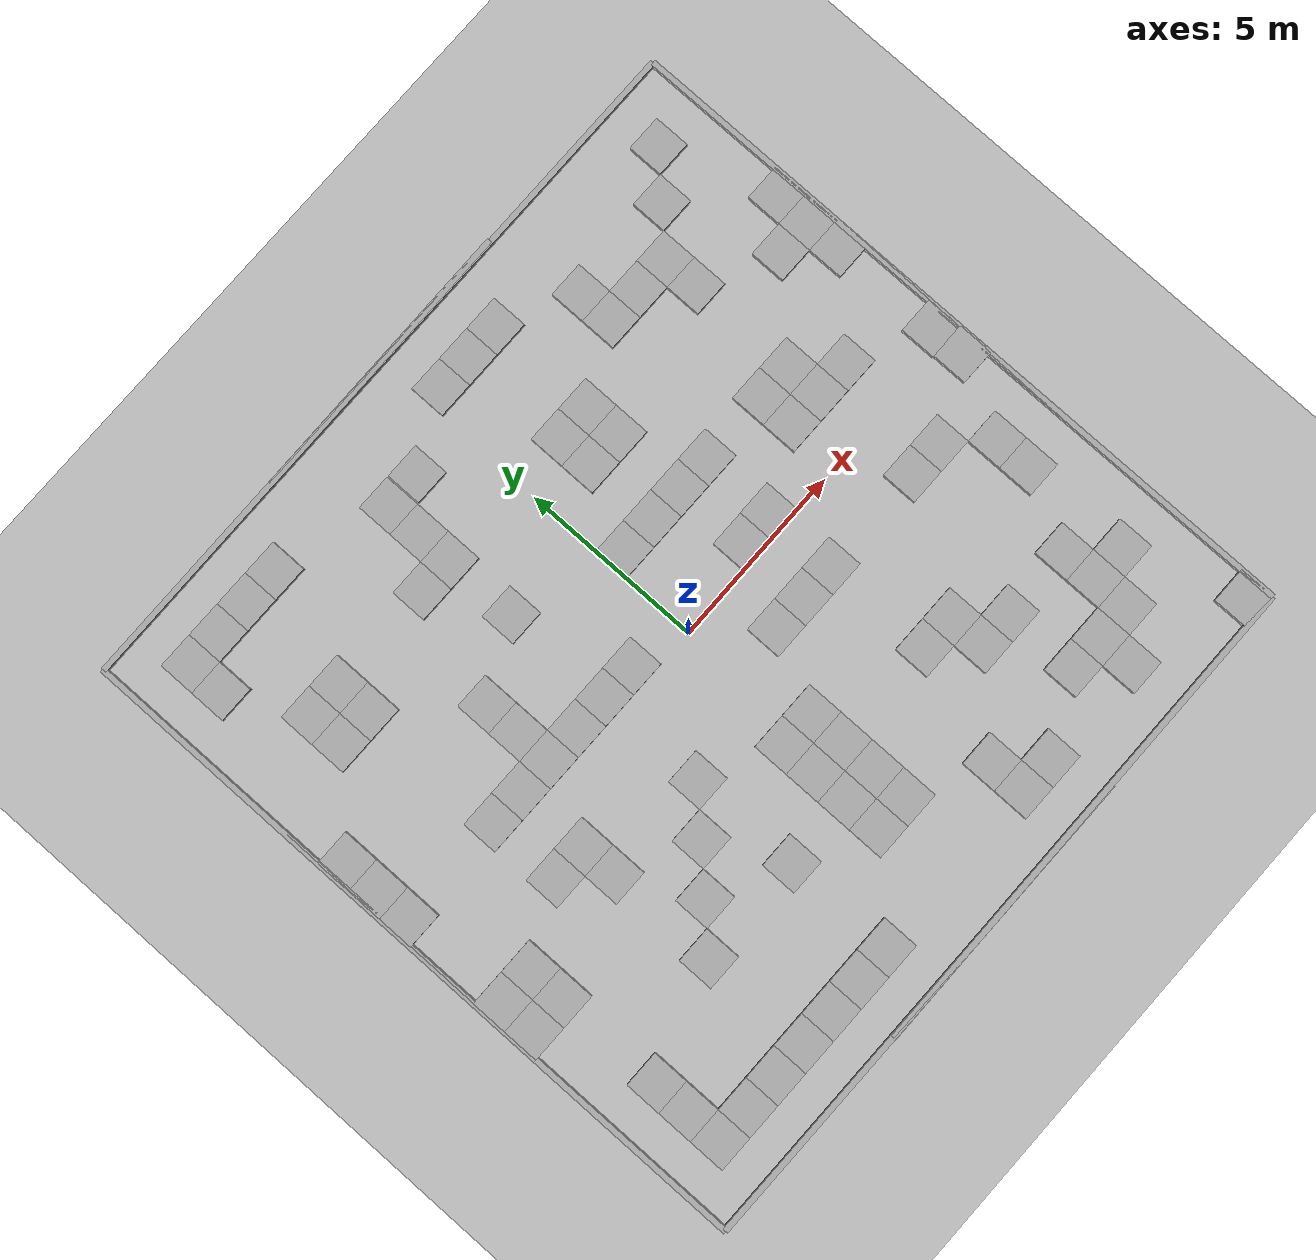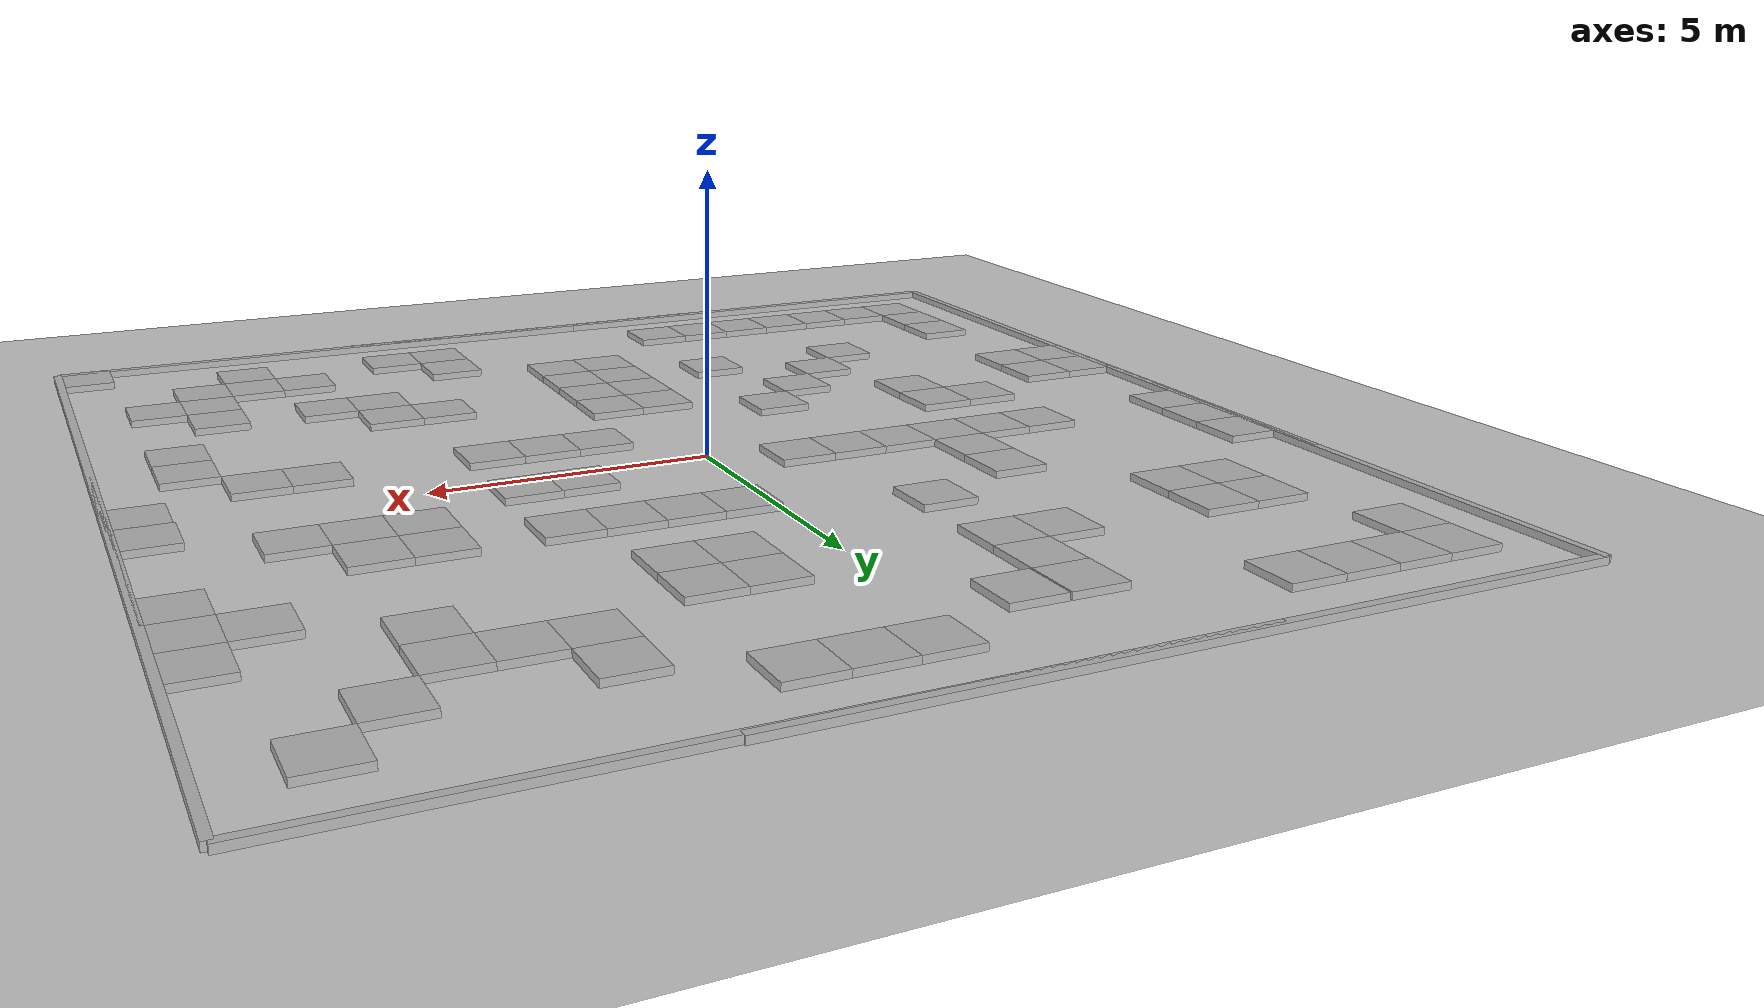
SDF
<sdf version="1.7">
 <world name="default">
  <light name="sun" type="directional">
   <pose>0 0 10 0 -0 0</pose>
   <diffuse>0.8 0.8 0.8 1</diffuse>
   <specular>0.2 0.2 0.2 1</specular>
   <attenuation>
    <range>1000</range>
    <constant>0.9</constant>
    <linear>0.01</linear>
    <quadratic>0.001</quadratic>
   </attenuation>
   <direction>-0.5 0.1 -0.9</direction>
   <spot><inner_angle>0</inner_angle><outer_angle>0</outer_angle><falloff>0</falloff></spot>
  </light>
  <model name="ground_plane">
   <static>1</static>
   <link name="link">
    <collision name="collision">
     <geometry><plane><normal>0 0 1</normal><size>100 100</size></plane></geometry>
     <surface>
      <contact><collide_bitmask>65535</collide_bitmask></contact>
      <friction><ode><mu>100</mu><mu2>50</mu2></ode></friction>
     </surface>
    </collision>
    <visual name="visual">
     <cast_shadows>0</cast_shadows>
     <geometry><plane><normal>0 0 1</normal><size>100 100</size></plane></geometry>
     <material>
      <script><uri>file://media/materials/scripts/gazebo.material</uri><name>Gazebo/Grey</name></script>
     </material>
    </visual>
   </link>
  </model>
  <gravity>0 0 -9.8</gravity>
  <magnetic_field>6e-06 2.3e-05 -4.2e-05</magnetic_field>
  <atmosphere type="adiabatic"/>
  <physics type="ode">
   <max_step_size>0.001</max_step_size>
   <real_time_factor>1</real_time_factor>
   <real_time_update_rate>1000</real_time_update_rate>
  </physics>
  <scene><ambient>0.4 0.4 0.4 1</ambient><background>0.7 0.7 0.7 1</background><shadows>1</shadows></scene>
  <spherical_coordinates>
   <surface_model>EARTH_WGS84</surface_model>
   <latitude_deg>0</latitude_deg>
   <longitude_deg>0</longitude_deg>
   <elevation>0</elevation>
   <heading_deg>0</heading_deg>
  </spherical_coordinates>
  <model name="concrete_barrier_14m">
   <static>1</static>
   <link name="link">
    <collision name="concrete_barrier_14m_01">
     <pose>-0 0 0.3 0 -0 0</pose>
     <geometry><box><size>14 0.15 0.6</size></box></geometry>
    </collision>
    <visual name="concrete_barrier_14m_visual">
     <geometry><mesh><uri>model://concrete_barrier_14m/meshes/concrete_barrier_14m.dae</uri></mesh></geometry>
    </visual>
   </link>
   <pose>-10 3 0 0 -0 0</pose>
  </model>
  <model name="concrete_barrier_14m_0">
   <static>1</static>
   <link name="link">
    <collision name="concrete_barrier_14m_01">
     <pose>-0 0 0.3 0 -0 0</pose>
     <geometry><box><size>14 0.15 0.6</size></box></geometry>
    </collision>
    <visual name="concrete_barrier_14m_visual">
     <geometry><mesh><uri>model://concrete_barrier_14m/meshes/concrete_barrier_14m.dae</uri></mesh></geometry>
    </visual>
   </link>
   <pose>10 3 0 0 -0 0</pose>
  </model>
  <model name="concrete_barrier_14m_1">
   <static>1</static>
   <link name="link">
    <collision name="concrete_barrier_14m_01">
     <pose>-0 0 0.3 0 -0 0</pose>
     <geometry><box><size>14 0.15 0.6</size></box></geometry>
    </collision>
    <visual name="concrete_barrier_14m_visual">
     <geometry><mesh><uri>model://concrete_barrier_14m/meshes/concrete_barrier_14m.dae</uri></mesh></geometry>
    </visual>
   </link>
   <pose>-3 10 0 0 -0 1.57603</pose>
  </model>
  <model name="concrete_barrier_14m_2">
   <static>1</static>
   <link name="link">
    <collision name="concrete_barrier_14m_01">
     <pose>-0 0 0.3 0 -0 0</pose>
     <geometry><box><size>14 0.15 0.6</size></box></geometry>
    </collision>
    <visual name="concrete_barrier_14m_visual">
     <geometry><mesh><uri>model://concrete_barrier_14m/meshes/concrete_barrier_14m.dae</uri></mesh></geometry>
    </visual>
   </link>
   <pose>-10 -3 0 0 -0 0</pose>
  </model>
  <model name="concrete_barrier_14m_3">
   <static>1</static>
   <link name="link">
    <collision name="concrete_barrier_14m_01">
     <pose>-0 0 0.3 0 -0 0</pose>
     <geometry><box><size>14 0.15 0.6</size></box></geometry>
    </collision>
    <visual name="concrete_barrier_14m_visual">
     <geometry><mesh><uri>model://concrete_barrier_14m/meshes/concrete_barrier_14m.dae</uri></mesh></geometry>
    </visual>
   </link>
   <pose>10 -3 0 0 -0 0</pose>
  </model>
  <model name="concrete_barrier_14m_4">
   <static>1</static>
   <link name="link">
    <collision name="concrete_barrier_14m_01">
     <pose>-0 0 0.3 0 -0 0</pose>
     <geometry><box><size>14 0.15 0.6</size></box></geometry>
    </collision>
    <visual name="concrete_barrier_14m_visual">
     <geometry><mesh><uri>model://concrete_barrier_14m/meshes/concrete_barrier_14m.dae</uri></mesh></geometry>
    </visual>
   </link>
   <pose>3 10 0 0 0 -1.56953</pose>
  </model>
  <model name="concrete_barrier_14m_5">
   <static>1</static>
   <link name="link">
    <collision name="concrete_barrier_14m_01">
     <pose>-0 0 0.3 0 -0 0</pose>
     <geometry><box><size>14 0.15 0.6</size></box></geometry>
    </collision>
    <visual name="concrete_barrier_14m_visual">
     <geometry><mesh><uri>model://concrete_barrier_14m/meshes/concrete_barrier_14m.dae</uri></mesh></geometry>
    </visual>
   </link>
   <pose>-3 -10 0 0 -0 1.56737</pose>
  </model>
  <model name="concrete_barrier_14m_6">
   <static>1</static>
   <link name="link">
    <collision name="concrete_barrier_14m_01">
     <pose>-0 0 0.3 0 -0 0</pose>
     <geometry><box><size>14 0.15 0.6</size></box></geometry>
    </collision>
    <visual name="concrete_barrier_14m_visual">
     <geometry><mesh><uri>model://concrete_barrier_14m/meshes/concrete_barrier_14m.dae</uri></mesh></geometry>
    </visual>
   </link>
   <pose>3 -10 0 0 0 -1.56953</pose>
  </model>
  <model name="concrete_cube_1m">
   <static>1</static>
   <link name="link">
    <collision name="concrete_cube_1m">
     <pose>-0 0 0.3 0 -0 0</pose>
     <geometry><box><size>1 1 0.6</size></box></geometry>
    </collision>
    <visual name="concrete_cube_1m_visual">
     <geometry><mesh><uri>model://concrete_cube_1m/meshes/concrete_cube_1m.dae</uri></mesh></geometry>
    </visual>
   </link>
   <pose>-2.5 6.5 0 0 -0 0</pose>
  </model>
  <model name="concrete_cube_1m_0">
   <static>1</static>
   <link name="link">
    <collision name="concrete_cube_1m">
     <pose>-0 0 0.3 0 -0 0</pose>
     <geometry><box><size>1 1 0.6</size></box></geometry>
    </collision>
    <visual name="concrete_cube_1m_visual">
     <geometry><mesh><uri>model://concrete_cube_1m/meshes/concrete_cube_1m.dae</uri></mesh></geometry>
    </visual>
   </link>
   <pose>-6.5 4.5 0 0 -0 0</pose>
  </model>
  <model name="concrete_cube_1m_1">
   <static>1</static>
   <link name="link">
    <collision name="concrete_cube_1m">
     <pose>-0 0 0.3 0 -0 0</pose>
     <geometry><box><size>1 1 0.6</size></box></geometry>
    </collision>
    <visual name="concrete_cube_1m_visual">
     <geometry><mesh><uri>model://concrete_cube_1m/meshes/concrete_cube_1m.dae</uri></mesh></geometry>
    </visual>
   </link>
   <pose>-2.5 5.5 0 0 -0 0</pose>
  </model>
  <model name="concrete_cube_1m_2">
   <static>1</static>
   <link name="link">
    <collision name="concrete_cube_1m">
     <pose>-0 0 0.3 0 -0 0</pose>
     <geometry><box><size>1 1 0.6</size></box></geometry>
    </collision>
    <visual name="concrete_cube_1m_visual">
     <geometry><mesh><uri>model://concrete_cube_1m/meshes/concrete_cube_1m.dae</uri></mesh></geometry>
    </visual>
   </link>
   <pose>-1.5 0.5 0 0 -0 0</pose>
  </model>
  <model name="concrete_cube_1m_3">
   <static>1</static>
   <link name="link">
    <collision name="concrete_cube_1m">
     <pose>-0 0 0.3 0 -0 0</pose>
     <geometry><box><size>1 1 0.6</size></box></geometry>
    </collision>
    <visual name="concrete_cube_1m_visual">
     <geometry><mesh><uri>model://concrete_cube_1m/meshes/concrete_cube_1m.dae</uri></mesh></geometry>
    </visual>
   </link>
   <pose>-4.5 0.5 0 0 -0 0</pose>
  </model>
  <model name="concrete_cube_1m_4">
   <static>1</static>
   <link name="link">
    <collision name="concrete_cube_1m">
     <pose>-0 0 0.3 0 -0 0</pose>
     <geometry><box><size>1 1 0.6</size></box></geometry>
    </collision>
    <visual name="concrete_cube_1m_visual">
     <geometry><mesh><uri>model://concrete_cube_1m/meshes/concrete_cube_1m.dae</uri></mesh></geometry>
    </visual>
   </link>
   <pose>6.5 2.5 0 0 -0 0</pose>
  </model>
  <model name="concrete_cube_1m_5">
   <static>1</static>
   <link name="link">
    <collision name="concrete_cube_1m">
     <pose>-0 0 0.3 0 -0 0</pose>
     <geometry><box><size>1 1 0.6</size></box></geometry>
    </collision>
    <visual name="concrete_cube_1m_visual">
     <geometry><mesh><uri>model://concrete_cube_1m/meshes/concrete_cube_1m.dae</uri></mesh></geometry>
    </visual>
   </link>
   <pose>5.5 2.5 0 0 -0 0</pose>
  </model>
  <model name="concrete_cube_1m_6">
   <static>1</static>
   <link name="link">
    <collision name="concrete_cube_1m">
     <pose>-0 0 0.3 0 -0 0</pose>
     <geometry><box><size>1 1 0.6</size></box></geometry>
    </collision>
    <visual name="concrete_cube_1m_visual">
     <geometry><mesh><uri>model://concrete_cube_1m/meshes/concrete_cube_1m.dae</uri></mesh></geometry>
    </visual>
   </link>
   <pose>6.5 1.5 0 0 -0 0</pose>
  </model>
  <model name="concrete_cube_1m_7">
   <static>1</static>
   <link name="link">
    <collision name="concrete_cube_1m">
     <pose>-0 0 0.3 0 -0 0</pose>
     <geometry><box><size>1 1 0.6</size></box></geometry>
    </collision>
    <visual name="concrete_cube_1m_visual">
     <geometry><mesh><uri>model://concrete_cube_1m/meshes/concrete_cube_1m.dae</uri></mesh></geometry>
    </visual>
   </link>
   <pose>5.5 1.5 0 0 -0 0</pose>
  </model>
  <model name="concrete_cube_1m_8">
   <static>1</static>
   <link name="link">
    <collision name="concrete_cube_1m">
     <pose>-0 0 0.3 0 -0 0</pose>
     <geometry><box><size>1 1 0.6</size></box></geometry>
    </collision>
    <visual name="concrete_cube_1m_visual">
     <geometry><mesh><uri>model://concrete_cube_1m/meshes/concrete_cube_1m.dae</uri></mesh></geometry>
    </visual>
   </link>
   <pose>-0.5 -4.5 0 0 -0 0</pose>
  </model>
  <model name="concrete_cube_1m_9">
   <static>1</static>
   <link name="link">
    <collision name="concrete_cube_1m">
     <pose>-0 0 0.3 0 -0 0</pose>
     <geometry><box><size>1 1 0.6</size></box></geometry>
    </collision>
    <visual name="concrete_cube_1m_visual">
     <geometry><mesh><uri>model://concrete_cube_1m/meshes/concrete_cube_1m.dae</uri></mesh></geometry>
    </visual>
   </link>
   <pose>0.5 -4.5 0 0 -0 0</pose>
  </model>
  <model name="concrete_cube_1m_10">
   <static>1</static>
   <link name="link">
    <collision name="concrete_cube_1m">
     <pose>-0 0 0.3 0 -0 0</pose>
     <geometry><box><size>1 1 0.6</size></box></geometry>
    </collision>
    <visual name="concrete_cube_1m_visual">
     <geometry><mesh><uri>model://concrete_cube_1m/meshes/concrete_cube_1m.dae</uri></mesh></geometry>
    </visual>
   </link>
   <pose>4.5 -5.5 0 0 -0 0</pose>
  </model>
  <model name="concrete_cube_1m_11">
   <static>1</static>
   <link name="link">
    <collision name="concrete_cube_1m">
     <pose>-0 0 0.3 0 -0 0</pose>
     <geometry><box><size>1 1 0.6</size></box></geometry>
    </collision>
    <visual name="concrete_cube_1m_visual">
     <geometry><mesh><uri>model://concrete_cube_1m/meshes/concrete_cube_1m.dae</uri></mesh></geometry>
    </visual>
   </link>
   <pose>5.5 -5.5 0 0 -0 0</pose>
  </model>
  <model name="concrete_cube_1m_12">
   <static>1</static>
   <link name="link">
    <collision name="concrete_cube_1m">
     <pose>-0 0 0.3 0 -0 0</pose>
     <geometry><box><size>1 1 0.6</size></box></geometry>
    </collision>
    <visual name="concrete_cube_1m_visual">
     <geometry><mesh><uri>model://concrete_cube_1m/meshes/concrete_cube_1m.dae</uri></mesh></geometry>
    </visual>
   </link>
   <pose>-8.5 -8.5 0 0 -0 0</pose>
  </model>
  <model name="concrete_cube_1m_13">
   <static>1</static>
   <link name="link">
    <collision name="concrete_cube_1m">
     <pose>-0 0 0.3 0 -0 0</pose>
     <geometry><box><size>1 1 0.6</size></box></geometry>
    </collision>
    <visual name="concrete_cube_1m_visual">
     <geometry><mesh><uri>model://concrete_cube_1m/meshes/concrete_cube_1m.dae</uri></mesh></geometry>
    </visual>
   </link>
   <pose>-7.5 -8.5 0 0 -0 0</pose>
  </model>
  <model name="concrete_cube_1m_14">
   <static>1</static>
   <link name="link">
    <collision name="concrete_cube_1m">
     <pose>-0 0 0.3 0 -0 0</pose>
     <geometry><box><size>1 1 0.6</size></box></geometry>
    </collision>
    <visual name="concrete_cube_1m_visual">
     <geometry><mesh><uri>model://concrete_cube_1m/meshes/concrete_cube_1m.dae</uri></mesh></geometry>
    </visual>
   </link>
   <pose>-6.5 -8.5 0 0 -0 0</pose>
  </model>
  <model name="concrete_cube_1m_15">
   <static>1</static>
   <link name="link">
    <collision name="concrete_cube_1m">
     <pose>-0 0 0.3 0 -0 0</pose>
     <geometry><box><size>1 1 0.6</size></box></geometry>
    </collision>
    <visual name="concrete_cube_1m_visual">
     <geometry><mesh><uri>model://concrete_cube_1m/meshes/concrete_cube_1m.dae</uri></mesh></geometry>
    </visual>
   </link>
   <pose>-8.5 -7.5 0 0 -0 0</pose>
  </model>
  <model name="concrete_cube_1m_16">
   <static>1</static>
   <link name="link">
    <collision name="concrete_cube_1m">
     <pose>-0 0 0.3 0 -0 0</pose>
     <geometry><box><size>1 1 0.6</size></box></geometry>
    </collision>
    <visual name="concrete_cube_1m_visual">
     <geometry><mesh><uri>model://concrete_cube_1m/meshes/concrete_cube_1m.dae</uri></mesh></geometry>
    </visual>
   </link>
   <pose>-8.5 -6.5 0 0 -0 0</pose>
  </model>
  <model name="concrete_cube_1m_17">
   <static>1</static>
   <link name="link">
    <collision name="concrete_cube_1m">
     <pose>-0 0 0.3 0 -0 0</pose>
     <geometry><box><size>1 1 0.6</size></box></geometry>
    </collision>
    <visual name="concrete_cube_1m_visual">
     <geometry><mesh><uri>model://concrete_cube_1m/meshes/concrete_cube_1m.dae</uri></mesh></geometry>
    </visual>
   </link>
   <pose>2.5 5.5 0 0 -0 0</pose>
  </model>
  <model name="concrete_cube_1m_18">
   <static>1</static>
   <link name="link">
    <collision name="concrete_cube_1m">
     <pose>-0 0 0.3 0 -0 0</pose>
     <geometry><box><size>1 1 0.6</size></box></geometry>
    </collision>
    <visual name="concrete_cube_1m_visual">
     <geometry><mesh><uri>model://concrete_cube_1m/meshes/concrete_cube_1m.dae</uri></mesh></geometry>
    </visual>
   </link>
   <pose>8.5 8.5 0 0 -0 0</pose>
  </model>
  <model name="concrete_cube_1m_19">
   <static>1</static>
   <link name="link">
    <collision name="concrete_cube_1m">
     <pose>-0 0 0.3 0 -0 0</pose>
     <geometry><box><size>1 1 0.6</size></box></geometry>
    </collision>
    <visual name="concrete_cube_1m_visual">
     <geometry><mesh><uri>model://concrete_cube_1m/meshes/concrete_cube_1m.dae</uri></mesh></geometry>
    </visual>
   </link>
   <pose>7.5 7.5 0 0 -0 0</pose>
  </model>
  <model name="concrete_cube_1m_20">
   <static>1</static>
   <link name="link">
    <collision name="concrete_cube_1m">
     <pose>-0 0 0.3 0 -0 0</pose>
     <geometry><box><size>1 1 0.6</size></box></geometry>
    </collision>
    <visual name="concrete_cube_1m_visual">
     <geometry><mesh><uri>model://concrete_cube_1m/meshes/concrete_cube_1m.dae</uri></mesh></geometry>
    </visual>
   </link>
   <pose>6.5 6.5 0 0 -0 0</pose>
  </model>
  <model name="concrete_cube_1m_21">
   <static>1</static>
   <link name="link">
    <collision name="concrete_cube_1m">
     <pose>-0 0 0.3 0 -0 0</pose>
     <geometry><box><size>1 1 0.6</size></box></geometry>
    </collision>
    <visual name="concrete_cube_1m_visual">
     <geometry><mesh><uri>model://concrete_cube_1m/meshes/concrete_cube_1m.dae</uri></mesh></geometry>
    </visual>
   </link>
   <pose>6.5 5.5 0 0 -0 0</pose>
  </model>
  <model name="concrete_cube_1m_22">
   <static>1</static>
   <link name="link">
    <collision name="concrete_cube_1m">
     <pose>-0 0 0.3 0 -0 0</pose>
     <geometry><box><size>1 1 0.6</size></box></geometry>
    </collision>
    <visual name="concrete_cube_1m_visual">
     <geometry><mesh><uri>model://concrete_cube_1m/meshes/concrete_cube_1m.dae</uri></mesh></geometry>
    </visual>
   </link>
   <pose>5.5 6.5 0 0 -0 0</pose>
  </model>
  <model name="concrete_cube_1m_23">
   <static>1</static>
   <link name="link">
    <collision name="concrete_cube_1m">
     <pose>-0 0 0.3 0 -0 0</pose>
     <geometry><box><size>1 1 0.6</size></box></geometry>
    </collision>
    <visual name="concrete_cube_1m_visual">
     <geometry><mesh><uri>model://concrete_cube_1m/meshes/concrete_cube_1m.dae</uri></mesh></geometry>
    </visual>
   </link>
   <pose>4.5 6.5 0 0 -0 0</pose>
  </model>
  <model name="concrete_cube_1m_24">
   <static>1</static>
   <link name="link">
    <collision name="concrete_cube_1m">
     <pose>-0 0 0.3 0 -0 0</pose>
     <geometry><box><size>1 1 0.6</size></box></geometry>
    </collision>
    <visual name="concrete_cube_1m_visual">
     <geometry><mesh><uri>model://concrete_cube_1m/meshes/concrete_cube_1m.dae</uri></mesh></geometry>
    </visual>
   </link>
   <pose>4.5 7.5 0 0 -0 0</pose>
  </model>
  <model name="concrete_cube_1m_25">
   <static>1</static>
   <link name="link">
    <collision name="concrete_cube_1m">
     <pose>-0 0 0.3 0 -0 0</pose>
     <geometry><box><size>1 1 0.6</size></box></geometry>
    </collision>
    <visual name="concrete_cube_1m_visual">
     <geometry><mesh><uri>model://concrete_cube_1m/meshes/concrete_cube_1m.dae</uri></mesh></geometry>
    </visual>
   </link>
   <pose>3.5 2.5 0 0 -0 0</pose>
  </model>
  <model name="concrete_cube_1m_26">
   <static>1</static>
   <link name="link">
    <collision name="concrete_cube_1m">
     <pose>-0 0 0.3 0 -0 0</pose>
     <geometry><box><size>1 1 0.6</size></box></geometry>
    </collision>
    <visual name="concrete_cube_1m_visual">
     <geometry><mesh><uri>model://concrete_cube_1m/meshes/concrete_cube_1m.dae</uri></mesh></geometry>
    </visual>
   </link>
   <pose>2.5 2.5 0 0 -0 0</pose>
  </model>
  <model name="concrete_cube_1m_27">
   <static>1</static>
   <link name="link">
    <collision name="concrete_cube_1m">
     <pose>-0 0 0.3 0 -0 0</pose>
     <geometry><box><size>1 1 0.6</size></box></geometry>
    </collision>
    <visual name="concrete_cube_1m_visual">
     <geometry><mesh><uri>model://concrete_cube_1m/meshes/concrete_cube_1m.dae</uri></mesh></geometry>
    </visual>
   </link>
   <pose>1.5 2.5 0 0 -0 0</pose>
  </model>
  <model name="concrete_cube_1m_28">
   <static>1</static>
   <link name="link">
    <collision name="concrete_cube_1m">
     <pose>-0 0 0.3 0 -0 0</pose>
     <geometry><box><size>1 1 0.6</size></box></geometry>
    </collision>
    <visual name="concrete_cube_1m_visual">
     <geometry><mesh><uri>model://concrete_cube_1m/meshes/concrete_cube_1m.dae</uri></mesh></geometry>
    </visual>
   </link>
   <pose>0.5 2.5 0 0 -0 0</pose>
  </model>
  <model name="concrete_cube_1m_29">
   <static>1</static>
   <link name="link">
    <collision name="concrete_cube_1m">
     <pose>-0 0 0.3 0 -0 0</pose>
     <geometry><box><size>1 1 0.6</size></box></geometry>
    </collision>
    <visual name="concrete_cube_1m_visual">
     <geometry><mesh><uri>model://concrete_cube_1m/meshes/concrete_cube_1m.dae</uri></mesh></geometry>
    </visual>
   </link>
   <pose>1.5 4.5 0 0 -0 0</pose>
  </model>
  <model name="concrete_cube_1m_30">
   <static>1</static>
   <link name="link">
    <collision name="concrete_cube_1m">
     <pose>-0 0 0.3 0 -0 0</pose>
     <geometry><box><size>1 1 0.6</size></box></geometry>
    </collision>
    <visual name="concrete_cube_1m_visual">
     <geometry><mesh><uri>model://concrete_cube_1m/meshes/concrete_cube_1m.dae</uri></mesh></geometry>
    </visual>
   </link>
   <pose>8.5 4.5 0 0 -0 0</pose>
  </model>
  <model name="concrete_cube_1m_31">
   <static>1</static>
   <link name="link">
    <collision name="concrete_cube_1m">
     <pose>-0 0 0.3 0 -0 0</pose>
     <geometry><box><size>1 1 0.6</size></box></geometry>
    </collision>
    <visual name="concrete_cube_1m_visual">
     <geometry><mesh><uri>model://concrete_cube_1m/meshes/concrete_cube_1m.dae</uri></mesh></geometry>
    </visual>
   </link>
   <pose>9.5 4.5 0 0 -0 0</pose>
  </model>
  <model name="concrete_cube_1m_32">
   <static>1</static>
   <link name="link">
    <collision name="concrete_cube_1m">
     <pose>-0 0 0.3 0 -0 0</pose>
     <geometry><box><size>1 1 0.6</size></box></geometry>
    </collision>
    <visual name="concrete_cube_1m_visual">
     <geometry><mesh><uri>model://concrete_cube_1m/meshes/concrete_cube_1m.dae</uri></mesh></geometry>
    </visual>
   </link>
   <pose>9.5 3.5 0 0 -0 0</pose>
  </model>
  <model name="concrete_cube_1m_33">
   <static>1</static>
   <link name="link">
    <collision name="concrete_cube_1m">
     <pose>-0 0 0.3 0 -0 0</pose>
     <geometry><box><size>1 1 0.6</size></box></geometry>
    </collision>
    <visual name="concrete_cube_1m_visual">
     <geometry><mesh><uri>model://concrete_cube_1m/meshes/concrete_cube_1m.dae</uri></mesh></geometry>
    </visual>
   </link>
   <pose>9.5 5.5 0 0 -0 0</pose>
  </model>
  <model name="concrete_cube_1m_34">
   <static>1</static>
   <link name="link">
    <collision name="concrete_cube_1m">
     <pose>-0 0 0.3 0 -0 0</pose>
     <geometry><box><size>1 1 0.6</size></box></geometry>
    </collision>
    <visual name="concrete_cube_1m_visual">
     <geometry><mesh><uri>model://concrete_cube_1m/meshes/concrete_cube_1m.dae</uri></mesh></geometry>
    </visual>
   </link>
   <pose>7.5 1.5 0 0 -0 0</pose>
  </model>
  <model name="concrete_cube_1m_35">
   <static>1</static>
   <link name="link">
    <collision name="concrete_cube_1m">
     <pose>-0 0 0.3 0 -0 0</pose>
     <geometry><box><size>1 1 0.6</size></box></geometry>
    </collision>
    <visual name="concrete_cube_1m_visual">
     <geometry><mesh><uri>model://concrete_cube_1m/meshes/concrete_cube_1m.dae</uri></mesh></geometry>
    </visual>
   </link>
   <pose>9.5 0.5 0 0 -0 0</pose>
  </model>
  <model name="concrete_cube_1m_36">
   <static>1</static>
   <link name="link">
    <collision name="concrete_cube_1m">
     <pose>-0 0 0.3 0 -0 0</pose>
     <geometry><box><size>1 1 0.6</size></box></geometry>
    </collision>
    <visual name="concrete_cube_1m_visual">
     <geometry><mesh><uri>model://concrete_cube_1m/meshes/concrete_cube_1m.dae</uri></mesh></geometry>
    </visual>
   </link>
   <pose>2.5 8.5 0 0 -0 0</pose>
  </model>
  <model name="concrete_cube_1m_37">
   <static>1</static>
   <link name="link">
    <collision name="concrete_cube_1m">
     <pose>-0 0 0.3 0 -0 0</pose>
     <geometry><box><size>1 1 0.6</size></box></geometry>
    </collision>
    <visual name="concrete_cube_1m_visual">
     <geometry><mesh><uri>model://concrete_cube_1m/meshes/concrete_cube_1m.dae</uri></mesh></geometry>
    </visual>
   </link>
   <pose>1.5 8.5 0 0 -0 0</pose>
  </model>
  <model name="concrete_cube_1m_38">
   <static>1</static>
   <link name="link">
    <collision name="concrete_cube_1m">
     <pose>-0 0 0.3 0 -0 0</pose>
     <geometry><box><size>1 1 0.6</size></box></geometry>
    </collision>
    <visual name="concrete_cube_1m_visual">
     <geometry><mesh><uri>model://concrete_cube_1m/meshes/concrete_cube_1m.dae</uri></mesh></geometry>
    </visual>
   </link>
   <pose>0.5 8.5 0 0 -0 0</pose>
  </model>
  <model name="concrete_cube_1m_39">
   <static>1</static>
   <link name="link">
    <collision name="concrete_cube_1m">
     <pose>-0 0 0.3 0 -0 0</pose>
     <geometry><box><size>1 1 0.6</size></box></geometry>
    </collision>
    <visual name="concrete_cube_1m_visual">
     <geometry><mesh><uri>model://concrete_cube_1m/meshes/concrete_cube_1m.dae</uri></mesh></geometry>
    </visual>
   </link>
   <pose>2.5 4.5 0 0 -0 0</pose>
  </model>
  <model name="concrete_cube_1m_40">
   <static>1</static>
   <link name="link">
    <collision name="concrete_cube_1m">
     <pose>-0 0 0.3 0 -0 0</pose>
     <geometry><box><size>1 1 0.6</size></box></geometry>
    </collision>
    <visual name="concrete_cube_1m_visual">
     <geometry><mesh><uri>model://concrete_cube_1m/meshes/concrete_cube_1m.dae</uri></mesh></geometry>
    </visual>
   </link>
   <pose>1.5 5.5 0 0 -0 0</pose>
  </model>
  <model name="concrete_cube_1m_41">
   <static>1</static>
   <link name="link">
    <collision name="concrete_cube_1m">
     <pose>-0 0 0.3 0 -0 0</pose>
     <geometry><box><size>1 1 0.6</size></box></geometry>
    </collision>
    <visual name="concrete_cube_1m_visual">
     <geometry><mesh><uri>model://concrete_cube_1m/meshes/concrete_cube_1m.dae</uri></mesh></geometry>
    </visual>
   </link>
   <pose>3.5 0.5 0 0 -0 0</pose>
  </model>
  <model name="concrete_cube_1m_42">
   <static>1</static>
   <link name="link">
    <collision name="concrete_cube_1m">
     <pose>-0 0 0.3 0 -0 0</pose>
     <geometry><box><size>1 1 0.6</size></box></geometry>
    </collision>
    <visual name="concrete_cube_1m_visual">
     <geometry><mesh><uri>model://concrete_cube_1m/meshes/concrete_cube_1m.dae</uri></mesh></geometry>
    </visual>
   </link>
   <pose>2.51365 0.491319 0 0 -0 0</pose>
  </model>
  <model name="concrete_cube_1m_43">
   <static>1</static>
   <link name="link">
    <collision name="concrete_cube_1m">
     <pose>-0 0 0.3 0 -0 0</pose>
     <geometry><box><size>1 1 0.6</size></box></geometry>
    </collision>
    <visual name="concrete_cube_1m_visual">
     <geometry><mesh><uri>model://concrete_cube_1m/meshes/concrete_cube_1m.dae</uri></mesh></geometry>
    </visual>
   </link>
   <pose>-3.5 5.5 0 0 -0 0</pose>
  </model>
  <model name="concrete_cube_1m_44">
   <static>1</static>
   <link name="link">
    <collision name="concrete_cube_1m">
     <pose>-0 0 0.3 0 -0 0</pose>
     <geometry><box><size>1 1 0.6</size></box></geometry>
    </collision>
    <visual name="concrete_cube_1m_visual">
     <geometry><mesh><uri>model://concrete_cube_1m/meshes/concrete_cube_1m.dae</uri></mesh></geometry>
    </visual>
   </link>
   <pose>-2.5 7.5 0 0 -0 0</pose>
  </model>
  <model name="concrete_cube_1m_45">
   <static>1</static>
   <link name="link">
    <collision name="concrete_cube_1m">
     <pose>-0 0 0.3 0 -0 0</pose>
     <geometry><box><size>1 1 0.6</size></box></geometry>
    </collision>
    <visual name="concrete_cube_1m_visual">
     <geometry><mesh><uri>model://concrete_cube_1m/meshes/concrete_cube_1m.dae</uri></mesh></geometry>
    </visual>
   </link>
   <pose>-2.5 0.5 0 0 -0 0</pose>
  </model>
  <model name="concrete_cube_1m_46">
   <static>1</static>
   <link name="link">
    <collision name="concrete_cube_1m">
     <pose>-0 0 0.3 0 -0 0</pose>
     <geometry><box><size>1 1 0.6</size></box></geometry>
    </collision>
    <visual name="concrete_cube_1m_visual">
     <geometry><mesh><uri>model://concrete_cube_1m/meshes/concrete_cube_1m.dae</uri></mesh></geometry>
    </visual>
   </link>
   <pose>-3.5 0.5 0 0 -0 0</pose>
  </model>
  <model name="concrete_cube_1m_47">
   <static>1</static>
   <link name="link">
    <collision name="concrete_cube_1m">
     <pose>-0 0 0.3 0 -0 0</pose>
     <geometry><box><size>1 1 0.6</size></box></geometry>
    </collision>
    <visual name="concrete_cube_1m_visual">
     <geometry><mesh><uri>model://concrete_cube_1m/meshes/concrete_cube_1m.dae</uri></mesh></geometry>
    </visual>
   </link>
   <pose>-4.5 1.5 0 0 -0 0</pose>
  </model>
  <model name="concrete_cube_1m_48">
   <static>1</static>
   <link name="link">
    <collision name="concrete_cube_1m">
     <pose>-0 0 0.3 0 -0 0</pose>
     <geometry><box><size>1 1 0.6</size></box></geometry>
    </collision>
    <visual name="concrete_cube_1m_visual">
     <geometry><mesh><uri>model://concrete_cube_1m/meshes/concrete_cube_1m.dae</uri></mesh></geometry>
    </visual>
   </link>
   <pose>-4.5 2.5 0 0 -0 0</pose>
  </model>
  <model name="concrete_cube_1m_49">
   <static>1</static>
   <link name="link">
    <collision name="concrete_cube_1m">
     <pose>-0 0 0.3 0 -0 0</pose>
     <geometry><box><size>1 1 0.6</size></box></geometry>
    </collision>
    <visual name="concrete_cube_1m_visual">
     <geometry><mesh><uri>model://concrete_cube_1m/meshes/concrete_cube_1m.dae</uri></mesh></geometry>
    </visual>
   </link>
   <pose>-5.5 0.5 0 0 -0 0</pose>
  </model>
  <model name="concrete_cube_1m_50">
   <static>1</static>
   <link name="link">
    <collision name="concrete_cube_1m">
     <pose>-0 0 0.3 0 -0 0</pose>
     <geometry><box><size>1 1 0.6</size></box></geometry>
    </collision>
    <visual name="concrete_cube_1m_visual">
     <geometry><mesh><uri>model://concrete_cube_1m/meshes/concrete_cube_1m.dae</uri></mesh></geometry>
    </visual>
   </link>
   <pose>-6.5 0.5 0 0 -0 0</pose>
  </model>
  <model name="concrete_cube_1m_51">
   <static>1</static>
   <link name="link">
    <collision name="concrete_cube_1m">
     <pose>-0 0 0.3 0 -0 0</pose>
     <geometry><box><size>1 1 0.6</size></box></geometry>
    </collision>
    <visual name="concrete_cube_1m_visual">
     <geometry><mesh><uri>model://concrete_cube_1m/meshes/concrete_cube_1m.dae</uri></mesh></geometry>
    </visual>
   </link>
   <pose>-6.5 5.5 0 0 -0 0</pose>
  </model>
  <model name="concrete_cube_1m_52">
   <static>1</static>
   <link name="link">
    <collision name="concrete_cube_1m">
     <pose>-0 0 0.3 0 -0 0</pose>
     <geometry><box><size>1 1 0.6</size></box></geometry>
    </collision>
    <visual name="concrete_cube_1m_visual">
     <geometry><mesh><uri>model://concrete_cube_1m/meshes/concrete_cube_1m.dae</uri></mesh></geometry>
    </visual>
   </link>
   <pose>-7.5 4.5 0 0 -0 0</pose>
  </model>
  <model name="concrete_cube_1m_53">
   <static>1</static>
   <link name="link">
    <collision name="concrete_cube_1m">
     <pose>-0 0 0.3 0 -0 0</pose>
     <geometry><box><size>1 1 0.6</size></box></geometry>
    </collision>
    <visual name="concrete_cube_1m_visual">
     <geometry><mesh><uri>model://concrete_cube_1m/meshes/concrete_cube_1m.dae</uri></mesh></geometry>
    </visual>
   </link>
   <pose>-7.5 5.5 0 0 -0 0</pose>
  </model>
  <model name="concrete_cube_1m_54">
   <static>1</static>
   <link name="link">
    <collision name="concrete_cube_1m">
     <pose>-0 0 0.3 0 -0 0</pose>
     <geometry><box><size>1 1 0.6</size></box></geometry>
    </collision>
    <visual name="concrete_cube_1m_visual">
     <geometry><mesh><uri>model://concrete_cube_1m/meshes/concrete_cube_1m.dae</uri></mesh></geometry>
    </visual>
   </link>
   <pose>-8.5 8.5 0 0 -0 0</pose>
  </model>
  <model name="concrete_cube_1m_55">
   <static>1</static>
   <link name="link">
    <collision name="concrete_cube_1m">
     <pose>-0 0 0.3 0 -0 0</pose>
     <geometry><box><size>1 1 0.6</size></box></geometry>
    </collision>
    <visual name="concrete_cube_1m_visual">
     <geometry><mesh><uri>model://concrete_cube_1m/meshes/concrete_cube_1m.dae</uri></mesh></geometry>
    </visual>
   </link>
   <pose>-8.5 7.5 0 0 -0 0</pose>
  </model>
  <model name="concrete_cube_1m_56">
   <static>1</static>
   <link name="link">
    <collision name="concrete_cube_1m">
     <pose>-0 0 0.3 0 -0 0</pose>
     <geometry><box><size>1 1 0.6</size></box></geometry>
    </collision>
    <visual name="concrete_cube_1m_visual">
     <geometry><mesh><uri>model://concrete_cube_1m/meshes/concrete_cube_1m.dae</uri></mesh></geometry>
    </visual>
   </link>
   <pose>-7.5 8.5 0 0 -0 0</pose>
  </model>
  <model name="concrete_cube_1m_57">
   <static>1</static>
   <link name="link">
    <collision name="concrete_cube_1m">
     <pose>-0 0 0.3 0 -0 0</pose>
     <geometry><box><size>1 1 0.6</size></box></geometry>
    </collision>
    <visual name="concrete_cube_1m_visual">
     <geometry><mesh><uri>model://concrete_cube_1m/meshes/concrete_cube_1m.dae</uri></mesh></geometry>
    </visual>
   </link>
   <pose>-6.50041 8.5 0 0 -0 0</pose>
  </model>
  <model name="concrete_cube_1m_58">
   <static>1</static>
   <link name="link">
    <collision name="concrete_cube_1m">
     <pose>-0 0 0.3 0 -0 0</pose>
     <geometry><box><size>1 1 0.6</size></box></geometry>
    </collision>
    <visual name="concrete_cube_1m_visual">
     <geometry><mesh><uri>model://concrete_cube_1m/meshes/concrete_cube_1m.dae</uri></mesh></geometry>
    </visual>
   </link>
   <pose>-5.5 8.5 0 0 -0 0</pose>
  </model>
  <model name="concrete_cube_1m_59">
   <static>1</static>
   <link name="link">
    <collision name="concrete_cube_1m">
     <pose>-0 0 0.3 0 -0 0</pose>
     <geometry><box><size>1 1 0.6</size></box></geometry>
    </collision>
    <visual name="concrete_cube_1m_visual">
     <geometry><mesh><uri>model://concrete_cube_1m/meshes/concrete_cube_1m.dae</uri></mesh></geometry>
    </visual>
   </link>
   <pose>-1.46855 7.49755 0 0 -0 0</pose>
  </model>
  <model name="concrete_cube_1m_60">
   <static>1</static>
   <link name="link">
    <collision name="concrete_cube_1m">
     <pose>-0 0 0.3 0 -0 0</pose>
     <geometry><box><size>1 1 0.6</size></box></geometry>
    </collision>
    <visual name="concrete_cube_1m_visual">
     <geometry><mesh><uri>model://concrete_cube_1m/meshes/concrete_cube_1m.dae</uri></mesh></geometry>
    </visual>
   </link>
   <pose>-9.5 1.5 0 0 -0 0</pose>
  </model>
  <model name="concrete_cube_1m_61">
   <static>1</static>
   <link name="link">
    <collision name="concrete_cube_1m">
     <pose>-0 0 0.3 0 -0 0</pose>
     <geometry><box><size>1 1 0.6</size></box></geometry>
    </collision>
    <visual name="concrete_cube_1m_visual">
     <geometry><mesh><uri>model://concrete_cube_1m/meshes/concrete_cube_1m.dae</uri></mesh></geometry>
    </visual>
   </link>
   <pose>-9.5 2.5 0 0 -0 0</pose>
  </model>
  <model name="concrete_cube_1m_62">
   <static>1</static>
   <link name="link">
    <collision name="concrete_cube_1m">
     <pose>-0 0 0.3 0 -0 0</pose>
     <geometry><box><size>1 1 0.6</size></box></geometry>
    </collision>
    <visual name="concrete_cube_1m_visual">
     <geometry><mesh><uri>model://concrete_cube_1m/meshes/concrete_cube_1m.dae</uri></mesh></geometry>
    </visual>
   </link>
   <pose>-9.5 0.5 0 0 -0 0</pose>
  </model>
  <model name="concrete_cube_1m_63">
   <static>1</static>
   <link name="link">
    <collision name="concrete_cube_1m">
     <pose>-0 0 0.3 0 -0 0</pose>
     <geometry><box><size>1 1 0.6</size></box></geometry>
    </collision>
    <visual name="concrete_cube_1m_visual">
     <geometry><mesh><uri>model://concrete_cube_1m/meshes/concrete_cube_1m.dae</uri></mesh></geometry>
    </visual>
   </link>
   <pose>-2.5 3.5 0 0 -0 0</pose>
  </model>
  <model name="concrete_cube_1m_64">
   <static>1</static>
   <link name="link">
    <collision name="concrete_cube_1m">
     <pose>-0 0 0.3 0 -0 0</pose>
     <geometry><box><size>1 1 0.6</size></box></geometry>
    </collision>
    <visual name="concrete_cube_1m_visual">
     <geometry><mesh><uri>model://concrete_cube_1m/meshes/concrete_cube_1m.dae</uri></mesh></geometry>
    </visual>
   </link>
   <pose>7.5 -7.5 0 0 -0 0</pose>
  </model>
  <model name="concrete_cube_1m_65">
   <static>1</static>
   <link name="link">
    <collision name="concrete_cube_1m">
     <pose>-0 0 0.3 0 -0 0</pose>
     <geometry><box><size>1 1 0.6</size></box></geometry>
    </collision>
    <visual name="concrete_cube_1m_visual">
     <geometry><mesh><uri>model://concrete_cube_1m/meshes/concrete_cube_1m.dae</uri></mesh></geometry>
    </visual>
   </link>
   <pose>7.5 -6.5 0 0 -0 0</pose>
  </model>
  <model name="concrete_cube_1m_66">
   <static>1</static>
   <link name="link">
    <collision name="concrete_cube_1m">
     <pose>-0 0 0.3 0 -0 0</pose>
     <geometry><box><size>1 1 0.6</size></box></geometry>
    </collision>
    <visual name="concrete_cube_1m_visual">
     <geometry><mesh><uri>model://concrete_cube_1m/meshes/concrete_cube_1m.dae</uri></mesh></geometry>
    </visual>
   </link>
   <pose>7.5 -5.5 0 0 -0 0</pose>
  </model>
  <model name="concrete_cube_1m_67">
   <static>1</static>
   <link name="link">
    <collision name="concrete_cube_1m">
     <pose>-0 0 0.3 0 -0 0</pose>
     <geometry><box><size>1 1 0.6</size></box></geometry>
    </collision>
    <visual name="concrete_cube_1m_visual">
     <geometry><mesh><uri>model://concrete_cube_1m/meshes/concrete_cube_1m.dae</uri></mesh></geometry>
    </visual>
   </link>
   <pose>6.5 -7.5 0 0 -0 0</pose>
  </model>
  <model name="concrete_cube_1m_68">
   <static>1</static>
   <link name="link">
    <collision name="concrete_cube_1m">
     <pose>-0 0 0.3 0 -0 0</pose>
     <geometry><box><size>1 1 0.6</size></box></geometry>
    </collision>
    <visual name="concrete_cube_1m_visual">
     <geometry><mesh><uri>model://concrete_cube_1m/meshes/concrete_cube_1m.dae</uri></mesh></geometry>
    </visual>
   </link>
   <pose>5.5 -7.5 0 0 -0 0</pose>
  </model>
  <model name="concrete_cube_1m_69">
   <static>1</static>
   <link name="link">
    <collision name="concrete_cube_1m">
     <pose>-0 0 0.3 0 -0 0</pose>
     <geometry><box><size>1 1 0.6</size></box></geometry>
    </collision>
    <visual name="concrete_cube_1m_visual">
     <geometry><mesh><uri>model://concrete_cube_1m/meshes/concrete_cube_1m.dae</uri></mesh></geometry>
    </visual>
   </link>
   <pose>8.5 -2.5 0 0 -0 0</pose>
  </model>
  <model name="concrete_cube_1m_70">
   <static>1</static>
   <link name="link">
    <collision name="concrete_cube_1m">
     <pose>-0 0 0.3 0 -0 0</pose>
     <geometry><box><size>1 1 0.6</size></box></geometry>
    </collision>
    <visual name="concrete_cube_1m_visual">
     <geometry><mesh><uri>model://concrete_cube_1m/meshes/concrete_cube_1m.dae</uri></mesh></geometry>
    </visual>
   </link>
   <pose>9.52896 -0.491132 0 0 -0 0</pose>
  </model>
  <model name="concrete_cube_1m_71">
   <static>1</static>
   <link name="link">
    <collision name="concrete_cube_1m">
     <pose>-0 0 0.3 0 -0 0</pose>
     <geometry><box><size>1 1 0.6</size></box></geometry>
    </collision>
    <visual name="concrete_cube_1m_visual">
     <geometry><mesh><uri>model://concrete_cube_1m/meshes/concrete_cube_1m.dae</uri></mesh></geometry>
    </visual>
   </link>
   <pose>7.5 -1.5 0 0 -0 0</pose>
  </model>
  <model name="concrete_cube_1m_72">
   <static>1</static>
   <link name="link">
    <collision name="concrete_cube_1m">
     <pose>-0 0 0.3 0 -0 0</pose>
     <geometry><box><size>1 1 0.6</size></box></geometry>
    </collision>
    <visual name="concrete_cube_1m_visual">
     <geometry><mesh><uri>model://concrete_cube_1m/meshes/concrete_cube_1m.dae</uri></mesh></geometry>
    </visual>
   </link>
   <pose>8.5 -3.5 0 0 -0 0</pose>
  </model>
  <model name="concrete_cube_1m_73">
   <static>1</static>
   <link name="link">
    <collision name="concrete_cube_1m">
     <pose>-0 0 0.3 0 -0 0</pose>
     <geometry><box><size>1 1 0.6</size></box></geometry>
    </collision>
    <visual name="concrete_cube_1m_visual">
     <geometry><mesh><uri>model://concrete_cube_1m/meshes/concrete_cube_1m.dae</uri></mesh></geometry>
    </visual>
   </link>
   <pose>6.5 -1.5 0 0 -0 0</pose>
  </model>
  <model name="concrete_cube_1m_74">
   <static>1</static>
   <link name="link">
    <collision name="concrete_cube_1m">
     <pose>-0 0 0.3 0 -0 0</pose>
     <geometry><box><size>1 1 0.6</size></box></geometry>
    </collision>
    <visual name="concrete_cube_1m_visual">
     <geometry><mesh><uri>model://concrete_cube_1m/meshes/concrete_cube_1m.dae</uri></mesh></geometry>
    </visual>
   </link>
   <pose>4.5 -4.5 0 0 -0 0</pose>
  </model>
  <model name="concrete_cube_1m_75">
   <static>1</static>
   <link name="link">
    <collision name="concrete_cube_1m">
     <pose>-0 0 0.3 0 -0 0</pose>
     <geometry><box><size>1 1 0.6</size></box></geometry>
    </collision>
    <visual name="concrete_cube_1m_visual">
     <geometry><mesh><uri>model://concrete_cube_1m/meshes/concrete_cube_1m.dae</uri></mesh></geometry>
    </visual>
   </link>
   <pose>3.5 -4.5 0 0 -0 0</pose>
  </model>
  <model name="concrete_cube_1m_76">
   <static>1</static>
   <link name="link">
    <collision name="concrete_cube_1m">
     <pose>-0 0 0.3 0 -0 0</pose>
     <geometry><box><size>1 1 0.6</size></box></geometry>
    </collision>
    <visual name="concrete_cube_1m_visual">
     <geometry><mesh><uri>model://concrete_cube_1m/meshes/concrete_cube_1m.dae</uri></mesh></geometry>
    </visual>
   </link>
   <pose>0.5 -3.5 0 0 -0 0</pose>
  </model>
  <model name="concrete_cube_1m_77">
   <static>1</static>
   <link name="link">
    <collision name="concrete_cube_1m">
     <pose>-0 0 0.3 0 -0 0</pose>
     <geometry><box><size>1 1 0.6</size></box></geometry>
    </collision>
    <visual name="concrete_cube_1m_visual">
     <geometry><mesh><uri>model://concrete_cube_1m/meshes/concrete_cube_1m.dae</uri></mesh></geometry>
    </visual>
   </link>
   <pose>-0.5 -3.5 0 0 -0 0</pose>
  </model>
  <model name="concrete_cube_1m_78">
   <static>1</static>
   <link name="link">
    <collision name="concrete_cube_1m">
     <pose>-0 0 0.3 0 -0 0</pose>
     <geometry><box><size>1 1 0.6</size></box></geometry>
    </collision>
    <visual name="concrete_cube_1m_visual">
     <geometry><mesh><uri>model://concrete_cube_1m/meshes/concrete_cube_1m.dae</uri></mesh></geometry>
    </visual>
   </link>
   <pose>0.5 -6.5 0 0 -0 0</pose>
  </model>
  <model name="concrete_cube_1m_79">
   <static>1</static>
   <link name="link">
    <collision name="concrete_cube_1m">
     <pose>-0 0 0.3 0 -0 0</pose>
     <geometry><box><size>1 1 0.6</size></box></geometry>
    </collision>
    <visual name="concrete_cube_1m_visual">
     <geometry><mesh><uri>model://concrete_cube_1m/meshes/concrete_cube_1m.dae</uri></mesh></geometry>
    </visual>
   </link>
   <pose>0.5 -5.5 0 0 -0 0</pose>
  </model>
  <model name="concrete_cube_1m_80">
   <static>1</static>
   <link name="link">
    <collision name="concrete_cube_1m">
     <pose>-0 0 0.3 0 -0 0</pose>
     <geometry><box><size>1 1 0.6</size></box></geometry>
    </collision>
    <visual name="concrete_cube_1m_visual">
     <geometry><mesh><uri>model://concrete_cube_1m/meshes/concrete_cube_1m.dae</uri></mesh></geometry>
    </visual>
   </link>
   <pose>-0.5 -6.5 0 0 -0 0</pose>
  </model>
  <model name="concrete_cube_1m_81">
   <static>1</static>
   <link name="link">
    <collision name="concrete_cube_1m">
     <pose>-0 0 0.3 0 -0 0</pose>
     <geometry><box><size>1 1 0.6</size></box></geometry>
    </collision>
    <visual name="concrete_cube_1m_visual">
     <geometry><mesh><uri>model://concrete_cube_1m/meshes/concrete_cube_1m.dae</uri></mesh></geometry>
    </visual>
   </link>
   <pose>-0.5 -5.5 0 0 -0 0</pose>
  </model>
  <model name="concrete_cube_1m_82">
   <static>1</static>
   <link name="link">
    <collision name="concrete_cube_1m">
     <pose>-0 0 0.3 0 -0 0</pose>
     <geometry><box><size>1 1 0.6</size></box></geometry>
    </collision>
    <visual name="concrete_cube_1m_visual">
     <geometry><mesh><uri>model://concrete_cube_1m/meshes/concrete_cube_1m.dae</uri></mesh></geometry>
    </visual>
   </link>
   <pose>2.5 -8.5 0 0 -0 0</pose>
  </model>
  <model name="concrete_cube_1m_83">
   <static>1</static>
   <link name="link">
    <collision name="concrete_cube_1m">
     <pose>-0 0 0.3 0 -0 0</pose>
     <geometry><box><size>1 1 0.6</size></box></geometry>
    </collision>
    <visual name="concrete_cube_1m_visual">
     <geometry><mesh><uri>model://concrete_cube_1m/meshes/concrete_cube_1m.dae</uri></mesh></geometry>
    </visual>
   </link>
   <pose>3.5 -8.5 0 0 -0 0</pose>
  </model>
  <model name="concrete_cube_1m_84">
   <static>1</static>
   <link name="link">
    <collision name="concrete_cube_1m">
     <pose>-0 0 0.3 0 -0 0</pose>
     <geometry><box><size>1 1 0.6</size></box></geometry>
    </collision>
    <visual name="concrete_cube_1m_visual">
     <geometry><mesh><uri>model://concrete_cube_1m/meshes/concrete_cube_1m.dae</uri></mesh></geometry>
    </visual>
   </link>
   <pose>3.5 -1.5 0 0 -0 0</pose>
  </model>
  <model name="concrete_cube_1m_85">
   <static>1</static>
   <link name="link">
    <collision name="concrete_cube_1m">
     <pose>-0 0 0.3 0 -0 0</pose>
     <geometry><box><size>1 1 0.6</size></box></geometry>
    </collision>
    <visual name="concrete_cube_1m_visual">
     <geometry><mesh><uri>model://concrete_cube_1m/meshes/concrete_cube_1m.dae</uri></mesh></geometry>
    </visual>
   </link>
   <pose>2.5 -1.5 0 0 -0 0</pose>
  </model>
  <model name="concrete_cube_1m_86">
   <static>1</static>
   <link name="link">
    <collision name="concrete_cube_1m">
     <pose>-0 0 0.3 0 -0 0</pose>
     <geometry><box><size>1 1 0.6</size></box></geometry>
    </collision>
    <visual name="concrete_cube_1m_visual">
     <geometry><mesh><uri>model://concrete_cube_1m/meshes/concrete_cube_1m.dae</uri></mesh></geometry>
    </visual>
   </link>
   <pose>1.5 -1.5 0 0 -0 0</pose>
  </model>
  <model name="concrete_cube_1m_87">
   <static>1</static>
   <link name="link">
    <collision name="concrete_cube_1m">
     <pose>-0 0 0.3 0 -0 0</pose>
     <geometry><box><size>1 1 0.6</size></box></geometry>
    </collision>
    <visual name="concrete_cube_1m_visual">
     <geometry><mesh><uri>model://concrete_cube_1m/meshes/concrete_cube_1m.dae</uri></mesh></geometry>
    </visual>
   </link>
   <pose>2.5 -7.5 0 0 -0 0</pose>
  </model>
  <model name="concrete_cube_1m_88">
   <static>1</static>
   <link name="link">
    <collision name="concrete_cube_1m">
     <pose>-0 0 0.3 0 -0 0</pose>
     <geometry><box><size>1 1 0.6</size></box></geometry>
    </collision>
    <visual name="concrete_cube_1m_visual">
     <geometry><mesh><uri>model://concrete_cube_1m/meshes/concrete_cube_1m.dae</uri></mesh></geometry>
    </visual>
   </link>
   <pose>-5.5 -8.5 0 0 -0 0</pose>
  </model>
  <model name="concrete_cube_1m_89">
   <static>1</static>
   <link name="link">
    <collision name="concrete_cube_1m">
     <pose>-0 0 0.3 0 -0 0</pose>
     <geometry><box><size>1 1 0.6</size></box></geometry>
    </collision>
    <visual name="concrete_cube_1m_visual">
     <geometry><mesh><uri>model://concrete_cube_1m/meshes/concrete_cube_1m.dae</uri></mesh></geometry>
    </visual>
   </link>
   <pose>-4.5 -8.5 0 0 -0 0</pose>
  </model>
  <model name="concrete_cube_1m_90">
   <static>1</static>
   <link name="link">
    <collision name="concrete_cube_1m">
     <pose>-0 0 0.3 0 -0 0</pose>
     <geometry><box><size>1 1 0.6</size></box></geometry>
    </collision>
    <visual name="concrete_cube_1m_visual">
     <geometry><mesh><uri>model://concrete_cube_1m/meshes/concrete_cube_1m.dae</uri></mesh></geometry>
    </visual>
   </link>
   <pose>-3.5 -8.5 0 0 -0 0</pose>
  </model>
  <model name="concrete_cube_1m_91">
   <static>1</static>
   <link name="link">
    <collision name="concrete_cube_1m">
     <pose>-0 0 0.3 0 -0 0</pose>
     <geometry><box><size>1 1 0.6</size></box></geometry>
    </collision>
    <visual name="concrete_cube_1m_visual">
     <geometry><mesh><uri>model://concrete_cube_1m/meshes/concrete_cube_1m.dae</uri></mesh></geometry>
    </visual>
   </link>
   <pose>-2.5 -8.5 0 0 -0 0</pose>
  </model>
  <model name="concrete_cube_1m_92">
   <static>1</static>
   <link name="link">
    <collision name="concrete_cube_1m">
     <pose>-0 0 0.3 0 -0 0</pose>
     <geometry><box><size>1 1 0.6</size></box></geometry>
    </collision>
    <visual name="concrete_cube_1m_visual">
     <geometry><mesh><uri>model://concrete_cube_1m/meshes/concrete_cube_1m.dae</uri></mesh></geometry>
    </visual>
   </link>
   <pose>-9.5 -3.5 0 0 -0 0</pose>
  </model>
  <model name="concrete_cube_1m_93">
   <static>1</static>
   <link name="link">
    <collision name="concrete_cube_1m">
     <pose>-0 0 0.3 0 -0 0</pose>
     <geometry><box><size>1 1 0.6</size></box></geometry>
    </collision>
    <visual name="concrete_cube_1m_visual">
     <geometry><mesh><uri>model://concrete_cube_1m/meshes/concrete_cube_1m.dae</uri></mesh></geometry>
    </visual>
   </link>
   <pose>-8.5 -3.5 0 0 -0 0</pose>
  </model>
  <model name="concrete_cube_1m_94">
   <static>1</static>
   <link name="link">
    <collision name="concrete_cube_1m">
     <pose>-0 0 0.3 0 -0 0</pose>
     <geometry><box><size>1 1 0.6</size></box></geometry>
    </collision>
    <visual name="concrete_cube_1m_visual">
     <geometry><mesh><uri>model://concrete_cube_1m/meshes/concrete_cube_1m.dae</uri></mesh></geometry>
    </visual>
   </link>
   <pose>-8.5 -2.5 0 0 -0 0</pose>
  </model>
  <model name="concrete_cube_1m_95">
   <static>1</static>
   <link name="link">
    <collision name="concrete_cube_1m">
     <pose>-0 0 0.3 0 -0 0</pose>
     <geometry><box><size>1 1 0.6</size></box></geometry>
    </collision>
    <visual name="concrete_cube_1m_visual">
     <geometry><mesh><uri>model://concrete_cube_1m/meshes/concrete_cube_1m.dae</uri></mesh></geometry>
    </visual>
   </link>
   <pose>-9.5 -2.5 0 0 -0 0</pose>
  </model>
  <model name="concrete_cube_1m_96">
   <static>1</static>
   <link name="link">
    <collision name="concrete_cube_1m">
     <pose>-0 0 0.3 0 -0 0</pose>
     <geometry><box><size>1 1 0.6</size></box></geometry>
    </collision>
    <visual name="concrete_cube_1m_visual">
     <geometry><mesh><uri>model://concrete_cube_1m/meshes/concrete_cube_1m.dae</uri></mesh></geometry>
    </visual>
   </link>
   <pose>-5.5 -5.5 0 0 -0 0</pose>
  </model>
  <model name="concrete_cube_1m_97">
   <static>1</static>
   <link name="link">
    <collision name="concrete_cube_1m">
     <pose>-0 0 0.3 0 -0 0</pose>
     <geometry><box><size>1 1 0.6</size></box></geometry>
    </collision>
    <visual name="concrete_cube_1m_visual">
     <geometry><mesh><uri>model://concrete_cube_1m/meshes/concrete_cube_1m.dae</uri></mesh></geometry>
    </visual>
   </link>
   <pose>-4.5 -4.5 0 0 -0 0</pose>
  </model>
  <model name="concrete_cube_1m_98">
   <static>1</static>
   <link name="link">
    <collision name="concrete_cube_1m">
     <pose>-0 0 0.3 0 -0 0</pose>
     <geometry><box><size>1 1 0.6</size></box></geometry>
    </collision>
    <visual name="concrete_cube_1m_visual">
     <geometry><mesh><uri>model://concrete_cube_1m/meshes/concrete_cube_1m.dae</uri></mesh></geometry>
    </visual>
   </link>
   <pose>-3.5 -3.5 0 0 -0 0</pose>
  </model>
  <model name="concrete_cube_1m_99">
   <static>1</static>
   <link name="link">
    <collision name="concrete_cube_1m">
     <pose>-0 0 0.3 0 -0 0</pose>
     <geometry><box><size>1 1 0.6</size></box></geometry>
    </collision>
    <visual name="concrete_cube_1m_visual">
     <geometry><mesh><uri>model://concrete_cube_1m/meshes/concrete_cube_1m.dae</uri></mesh></geometry>
    </visual>
   </link>
   <pose>-2.5 -2.5 0 0 -0 0</pose>
  </model>
  <model name="concrete_cube_1m_100">
   <static>1</static>
   <link name="link">
    <collision name="concrete_cube_1m">
     <pose>-0 0 0.3 0 -0 0</pose>
     <geometry><box><size>1 1 0.6</size></box></geometry>
    </collision>
    <visual name="concrete_cube_1m_visual">
     <geometry><mesh><uri>model://concrete_cube_1m/meshes/concrete_cube_1m.dae</uri></mesh></geometry>
    </visual>
   </link>
   <pose>-6.5 -1.5 0 0 -0 0</pose>
  </model>
  <model name="concrete_cube_1m_101">
   <static>1</static>
   <link name="link">
    <collision name="concrete_cube_1m">
     <pose>-0 0 0.3 0 -0 0</pose>
     <geometry><box><size>1 1 0.6</size></box></geometry>
    </collision>
    <visual name="concrete_cube_1m_visual">
     <geometry><mesh><uri>model://concrete_cube_1m/meshes/concrete_cube_1m.dae</uri></mesh></geometry>
    </visual>
   </link>
   <pose>-5.5 -1.5 0 0 -0 0</pose>
  </model>
  <model name="concrete_cube_1m_102">
   <static>1</static>
   <link name="link">
    <collision name="concrete_cube_1m">
     <pose>-0 0 0.3 0 -0 0</pose>
     <geometry><box><size>1 1 0.6</size></box></geometry>
    </collision>
    <visual name="concrete_cube_1m_visual">
     <geometry><mesh><uri>model://concrete_cube_1m/meshes/concrete_cube_1m.dae</uri></mesh></geometry>
    </visual>
   </link>
   <pose>-5.5 -2.5 0 0 -0 0</pose>
  </model>
  <model name="concrete_cube_1m_103">
   <static>1</static>
   <link name="link">
    <collision name="concrete_cube_1m">
     <pose>-0 0 0.3 0 -0 0</pose>
     <geometry><box><size>1 1 0.6</size></box></geometry>
    </collision>
    <visual name="concrete_cube_1m_visual">
     <geometry><mesh><uri>model://concrete_cube_1m/meshes/concrete_cube_1m.dae</uri></mesh></geometry>
    </visual>
   </link>
   <pose>-2.5 -5.5 0 0 -0 0</pose>
  </model>
  <model name="concrete_cube_1m_104">
   <static>1</static>
   <link name="link">
    <collision name="concrete_cube_1m">
     <pose>-0 0 0.3 0 -0 0</pose>
     <geometry><box><size>1 1 0.6</size></box></geometry>
    </collision>
    <visual name="concrete_cube_1m_visual">
     <geometry><mesh><uri>model://concrete_cube_1m/meshes/concrete_cube_1m.dae</uri></mesh></geometry>
    </visual>
   </link>
   <pose>6.5 -8.5 0 0 -0 0</pose>
  </model>
  <model name="concrete_cube_1m_105">
   <static>1</static>
   <link name="link">
    <collision name="concrete_cube_1m">
     <pose>-0 0 0.3 0 -0 0</pose>
     <geometry><box><size>1 1 0.6</size></box></geometry>
    </collision>
    <visual name="concrete_cube_1m_visual">
     <geometry><mesh><uri>model://concrete_cube_1m/meshes/concrete_cube_1m.dae</uri></mesh></geometry>
    </visual>
   </link>
   <pose>8.5 -6.5 0 0 -0 0</pose>
  </model>
  <model name="concrete_cube_1m_106">
   <static>1</static>
   <link name="link">
    <collision name="concrete_cube_1m">
     <pose>-0 0 0.3 0 -0 0</pose>
     <geometry><box><size>1 1 0.6</size></box></geometry>
    </collision>
    <visual name="concrete_cube_1m_visual">
     <geometry><mesh><uri>model://concrete_cube_1m/meshes/concrete_cube_1m.dae</uri></mesh></geometry>
    </visual>
   </link>
   <pose>9.5 -9.5 0 0 -0 0</pose>
  </model>
 </world>
</sdf>
